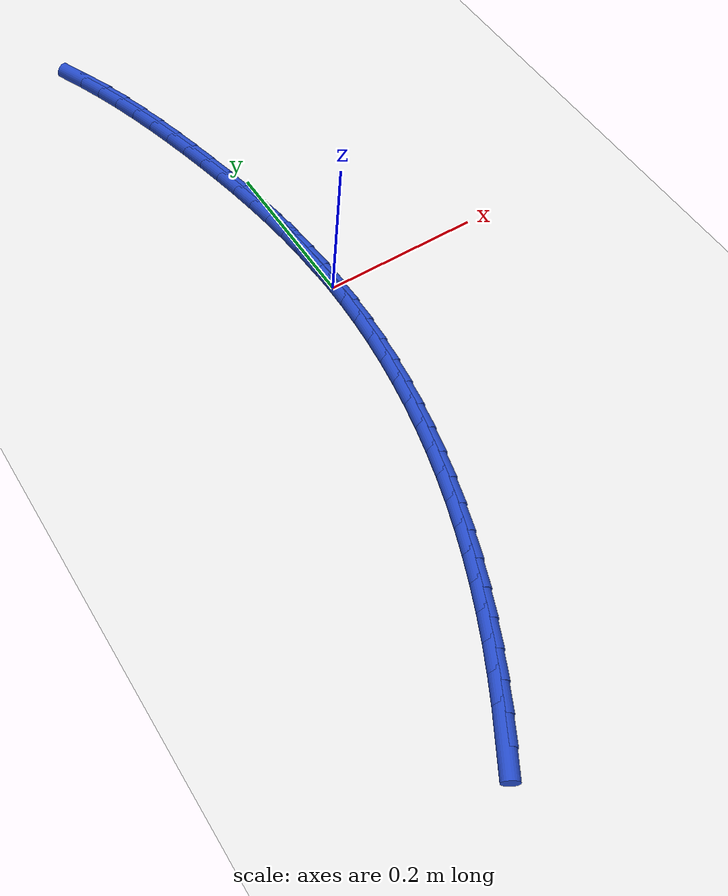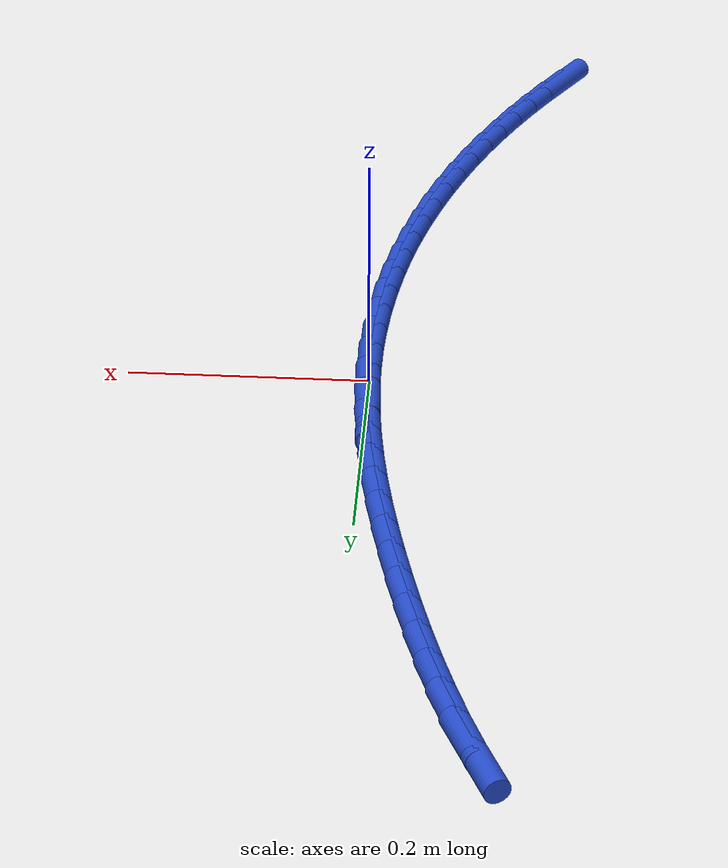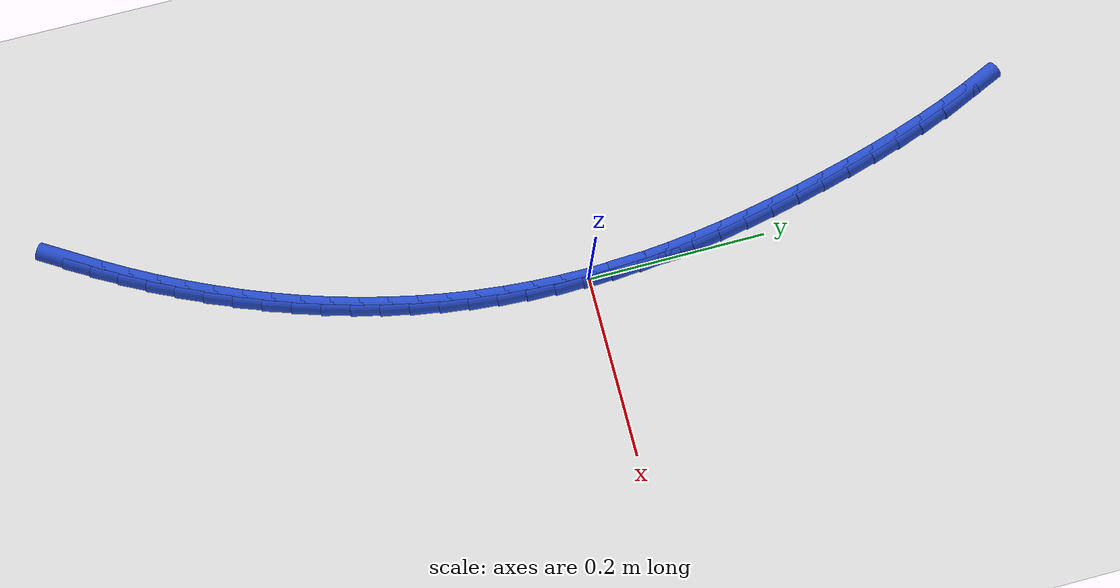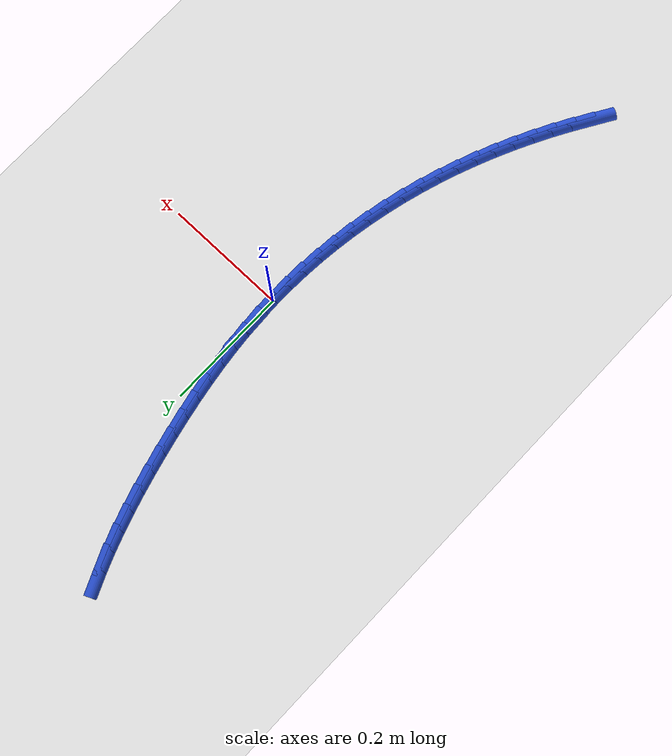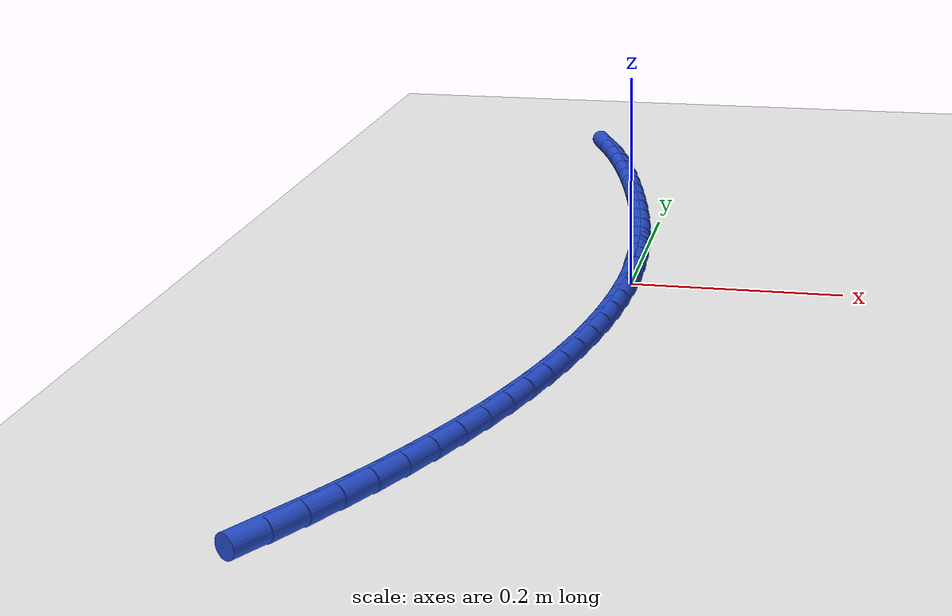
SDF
<sdf version="1.6">
 <world name="default">
  <model name="ground_plane">
   <static>1</static>
   <link name="link">
    <collision name="collision">
     <geometry><plane><normal>0 0 1</normal><size>100 100</size></plane></geometry>
     <surface><friction><ode><mu>100</mu><mu2>50</mu2></ode></friction></surface>
    </collision>
    <visual name="visual">
     <cast_shadows>0</cast_shadows>
     <geometry><plane><normal>0 0 1</normal><size>100 100</size></plane></geometry>
     <material>
      <script><uri>file://media/materials/scripts/gazebo.material</uri><name>Gazebo/WhiteGlow</name></script>
     </material>
    </visual>
   </link>
  </model>
  <model name="line">
   <link name="link_0">
    <pose>4.336808689942018e-18 3.469446951953614e-17 0.01 0 1.57 -1.5415884488783602</pose>
    <collision name="collision">
     <geometry><cylinder><radius>0.01</radius><length>0.08</length></cylinder></geometry>
    </collision>
    <visual name="visual">
     <material>
      <script><name>Gazebo/Blue</name><uri>file://media/materials/scripts/gazebo.material</uri></script>
     </material>
     <geometry><cylinder><radius>0.01</radius><length>0.08</length></cylinder></geometry>
    </visual>
   </link>
   <link name="link_1">
    <pose>-0.0009183013230216314 0.031431252091147034 0.01 0 1.57 -1.5081474570677618</pose>
    <collision name="collision">
     <geometry><cylinder><radius>0.01</radius><length>0.08</length></cylinder></geometry>
    </collision>
    <visual name="visual">
     <material>
      <script><name>Gazebo/Blue</name><uri>file://media/materials/scripts/gazebo.material</uri></script>
     </material>
     <geometry><cylinder><radius>0.01</radius><length>0.08</length></cylinder></geometry>
    </visual>
   </link>
   <link name="link_2">
    <pose>-0.0028864127806761068 0.06280509689555297 0.01 0 1.57 -1.4768871577441558</pose>
    <collision name="collision">
     <geometry><cylinder><radius>0.01</radius><length>0.08</length></cylinder></geometry>
    </collision>
    <visual name="visual">
     <material>
      <script><name>Gazebo/Blue</name><uri>file://media/materials/scripts/gazebo.material</uri></script>
     </material>
     <geometry><cylinder><radius>0.01</radius><length>0.08</length></cylinder></geometry>
    </visual>
   </link>
   <link name="link_3">
    <pose>-0.005836260036497518 0.09412440982551427 0.01 0 1.57 -1.4478570005480693</pose>
    <collision name="collision">
     <geometry><cylinder><radius>0.01</radius><length>0.08</length></cylinder></geometry>
    </collision>
    <visual name="visual">
     <material>
      <script><name>Gazebo/Blue</name><uri>file://media/materials/scripts/gazebo.material</uri></script>
     </material>
     <geometry><cylinder><radius>0.01</radius><length>0.08</length></cylinder></geometry>
    </visual>
   </link>
   <link name="link_4">
    <pose>-0.009699768754019965 0.12539206629332744 0.01 0 1.57 -1.4210836907950506</pose>
    <collision name="collision">
     <geometry><cylinder><radius>0.01</radius><length>0.08</length></cylinder></geometry>
    </collision>
    <visual name="visual">
     <material>
      <script><name>Gazebo/Blue</name><uri>file://media/materials/scripts/gazebo.material</uri></script>
     </material>
     <geometry><cylinder><radius>0.01</radius><length>0.08</length></cylinder></geometry>
    </visual>
   </link>
   <link name="link_5">
    <pose>-0.014408864596777551 0.156610941711289 0.01 0 1.57 -1.3965753767757954</pose>
    <collision name="collision">
     <geometry><cylinder><radius>0.01</radius><length>0.08</length></cylinder></geometry>
    </collision>
    <visual name="visual">
     <material>
      <script><name>Gazebo/Blue</name><uri>file://media/materials/scripts/gazebo.material</uri></script>
     </material>
     <geometry><cylinder><radius>0.01</radius><length>0.08</length></cylinder></geometry>
    </visual>
   </link>
   <link name="link_6">
    <pose>-0.019895473228304372 0.1877839114916954 0.01 0 1.57 -1.3743257470452452</pose>
    <collision name="collision">
     <geometry><cylinder><radius>0.01</radius><length>0.08</length></cylinder></geometry>
    </collision>
    <visual name="visual">
     <material>
      <script><name>Gazebo/Blue</name><uri>file://media/materials/scripts/gazebo.material</uri></script>
     </material>
     <geometry><cylinder><radius>0.01</radius><length>0.08</length></cylinder></geometry>
    </visual>
   </link>
   <link name="link_7">
    <pose>-0.026091520312134533 0.21891385104684313 0.01 0 1.57 -1.3543178584303566</pose>
    <collision name="collision">
     <geometry><cylinder><radius>0.01</radius><length>0.08</length></cylinder></geometry>
    </collision>
    <visual name="visual">
     <material>
      <script><name>Gazebo/Blue</name><uri>file://media/materials/scripts/gazebo.material</uri></script>
     </material>
     <geometry><cylinder><radius>0.01</radius><length>0.08</length></cylinder></geometry>
    </visual>
   </link>
   <link name="link_8">
    <pose>-0.032928931511802144 0.25000363578902873 0.01 0 1.57 -1.3365275845765345</pose>
    <collision name="collision">
     <geometry><cylinder><radius>0.01</radius><length>0.08</length></cylinder></geometry>
    </collision>
    <visual name="visual">
     <material>
      <script><name>Gazebo/Blue</name><uri>file://media/materials/scripts/gazebo.material</uri></script>
     </material>
     <geometry><cylinder><radius>0.01</radius><length>0.08</length></cylinder></geometry>
    </visual>
   </link>
   <link name="link_9">
    <pose>-0.04033963249084128 0.28105614113054855 0.01 0 1.57 -1.3200836614919882</pose>
    <collision name="collision">
     <geometry><cylinder><radius>0.01</radius><length>0.08</length></cylinder></geometry>
    </collision>
    <visual name="visual">
     <material>
      <script><name>Gazebo/Blue</name><uri>file://media/materials/scripts/gazebo.material</uri></script>
     </material>
     <geometry><cylinder><radius>0.01</radius><length>0.08</length></cylinder></geometry>
    </visual>
   </link>
   <link name="link_10">
    <pose>-0.04827984922859303 0.31206035759031553 0.01 0 1.57 -1.3013412949501342</pose>
    <collision name="collision">
     <geometry><cylinder><radius>0.01</radius><length>0.08</length></cylinder></geometry>
    </collision>
    <visual name="visual">
     <material>
      <script><name>Gazebo/Blue</name><uri>file://media/materials/scripts/gazebo.material</uri></script>
     </material>
     <geometry><cylinder><radius>0.01</radius><length>0.08</length></cylinder></geometry>
    </visual>
   </link>
   <link name="link_11">
    <pose>-0.05680957892490114 0.3429459821231411 0.01 0 1.57 -1.2792599001472036</pose>
    <collision name="collision">
     <geometry><cylinder><radius>0.01</radius><length>0.08</length></cylinder></geometry>
    </collision>
    <visual name="visual">
     <material>
      <script><name>Gazebo/Blue</name><uri>file://media/materials/scripts/gazebo.material</uri></script>
     </material>
     <geometry><cylinder><radius>0.01</radius><length>0.08</length></cylinder></geometry>
    </visual>
   </link>
   <link name="link_12">
    <pose>-0.06601651359103096 0.3736268872185536 0.01 0 1.57 -1.2537377770622167</pose>
    <collision name="collision">
     <geometry><cylinder><radius>0.01</radius><length>0.08</length></cylinder></geometry>
    </collision>
    <visual name="visual">
     <material>
      <script><name>Gazebo/Blue</name><uri>file://media/materials/scripts/gazebo.material</uri></script>
     </material>
     <geometry><cylinder><radius>0.01</radius><length>0.08</length></cylinder></geometry>
    </visual>
   </link>
   <link name="link_13">
    <pose>-0.07598834550704953 0.4040169452124909 0.01 0 1.57 -1.2246594559088175</pose>
    <collision name="collision">
     <geometry><cylinder><radius>0.01</radius><length>0.08</length></cylinder></geometry>
    </collision>
    <visual name="visual">
     <material>
      <script><name>Gazebo/Blue</name><uri>file://media/materials/scripts/gazebo.material</uri></script>
     </material>
     <geometry><cylinder><radius>0.01</radius><length>0.08</length></cylinder></geometry>
    </visual>
   </link>
   <link name="link_14">
    <pose>-0.08681276695302381 0.4340300284408909 0.01 0 1.57 -1.1919039512613172</pose>
    <collision name="collision">
     <geometry><cylinder><radius>0.01</radius><length>0.08</length></cylinder></geometry>
    </collision>
    <visual name="visual">
     <material>
      <script><name>Gazebo/Blue</name><uri>file://media/materials/scripts/gazebo.material</uri></script>
     </material>
     <geometry><cylinder><radius>0.01</radius><length>0.08</length></cylinder></geometry>
    </visual>
   </link>
   <link name="link_15">
    <pose>-0.0985774702090209 0.463580009239692 0.01 0 1.57 -1.1553553642338417</pose>
    <collision name="collision">
     <geometry><cylinder><radius>0.01</radius><length>0.08</length></cylinder></geometry>
    </collision>
    <visual name="visual">
     <material>
      <script><name>Gazebo/Blue</name><uri>file://media/materials/scripts/gazebo.material</uri></script>
     </material>
     <geometry><cylinder><radius>0.01</radius><length>0.08</length></cylinder></geometry>
    </visual>
   </link>
   <link name="link_202">
    <pose>-0.15802848197869798 -0.5394912976897038 0.01 0 1.57 1.027116705210835</pose>
    <collision name="collision">
     <geometry><cylinder><radius>0.01</radius><length>0.08</length></cylinder></geometry>
    </collision>
    <visual name="visual">
     <material>
      <script><name>Gazebo/Blue</name><uri>file://media/materials/scripts/gazebo.material</uri></script>
     </material>
     <geometry><cylinder><radius>0.01</radius><length>0.08</length></cylinder></geometry>
    </visual>
   </link>
   <link name="link_203">
    <pose>-0.14189157449816767 -0.5127941209234416 0.01 0 1.57 1.0552133177487213</pose>
    <collision name="collision">
     <geometry><cylinder><radius>0.01</radius><length>0.08</length></cylinder></geometry>
    </collision>
    <visual name="visual">
     <material>
      <script><name>Gazebo/Blue</name><uri>file://media/materials/scripts/gazebo.material</uri></script>
     </material>
     <geometry><cylinder><radius>0.01</radius><length>0.08</length></cylinder></geometry>
    </visual>
   </link>
   <link name="link_204">
    <pose>-0.12642271302007374 -0.48549829387166654 0.01 0 1.57 1.0835217330396556</pose>
    <collision name="collision">
     <geometry><cylinder><radius>0.01</radius><length>0.08</length></cylinder></geometry>
    </collision>
    <visual name="visual">
     <material>
      <script><name>Gazebo/Blue</name><uri>file://media/materials/scripts/gazebo.material</uri></script>
     </material>
     <geometry><cylinder><radius>0.01</radius><length>0.08</length></cylinder></geometry>
    </visual>
   </link>
   <link name="link_205">
    <pose>-0.1116631053994863 -0.45764432416716067 0.01 0 1.57 1.1121423320686668</pose>
    <collision name="collision">
     <geometry><cylinder><radius>0.01</radius><length>0.08</length></cylinder></geometry>
    </collision>
    <visual name="visual">
     <material>
      <script><name>Gazebo/Blue</name><uri>file://media/materials/scripts/gazebo.material</uri></script>
     </material>
     <geometry><cylinder><radius>0.01</radius><length>0.08</length></cylinder></geometry>
    </visual>
   </link>
   <link name="link_206">
    <pose>-0.09765395949147594 -0.42927271944270634 0.01 0 1.57 1.1411732532061594</pose>
    <collision name="collision">
     <geometry><cylinder><radius>0.01</radius><length>0.08</length></cylinder></geometry>
    </collision>
    <visual name="visual">
     <material>
      <script><name>Gazebo/Blue</name><uri>file://media/materials/scripts/gazebo.material</uri></script>
     </material>
     <geometry><cylinder><radius>0.01</radius><length>0.08</length></cylinder></geometry>
    </visual>
   </link>
   <link name="link_207">
    <pose>-0.0844364831511129 -0.4004239873310856 0.01 0 1.57 1.1707108512983093</pose>
    <collision name="collision">
     <geometry><cylinder><radius>0.01</radius><length>0.08</length></cylinder></geometry>
    </collision>
    <visual name="visual">
     <material>
      <script><name>Gazebo/Blue</name><uri>file://media/materials/scripts/gazebo.material</uri></script>
     </material>
     <geometry><cylinder><radius>0.01</radius><length>0.08</length></cylinder></geometry>
    </visual>
   </link>
   <link name="link_208">
    <pose>-0.07205188423346835 -0.3711386354650821 0.01 0 1.57 1.2008500029694325</pose>
    <collision name="collision">
     <geometry><cylinder><radius>0.01</radius><length>0.08</length></cylinder></geometry>
    </collision>
    <visual name="visual">
     <material>
      <script><name>Gazebo/Blue</name><uri>file://media/materials/scripts/gazebo.material</uri></script>
     </material>
     <geometry><cylinder><radius>0.01</radius><length>0.08</length></cylinder></geometry>
    </visual>
   </link>
   <link name="link_209">
    <pose>-0.06054137059361252 -0.34145717147747784 0.01 0 1.57 1.2316842452039498</pose>
    <collision name="collision">
     <geometry><cylinder><radius>0.01</radius><length>0.08</length></cylinder></geometry>
    </collision>
    <visual name="visual">
     <material>
      <script><name>Gazebo/Blue</name><uri>file://media/materials/scripts/gazebo.material</uri></script>
     </material>
     <geometry><cylinder><radius>0.01</radius><length>0.08</length></cylinder></geometry>
    </visual>
   </link>
   <link name="link_210">
    <pose>-0.04994615008661592 -0.311420103001055 0.01 0 1.57 1.2633057279672395</pose>
    <collision name="collision">
     <geometry><cylinder><radius>0.01</radius><length>0.08</length></cylinder></geometry>
    </collision>
    <visual name="visual">
     <material>
      <script><name>Gazebo/Blue</name><uri>file://media/materials/scripts/gazebo.material</uri></script>
     </material>
     <geometry><cylinder><radius>0.01</radius><length>0.08</length></cylinder></geometry>
    </visual>
   </link>
   <link name="link_211">
    <pose>-0.040307430519596676 -0.2810679376629159 0.01 0 1.57 1.2956605451330676</pose>
    <collision name="collision">
     <geometry><cylinder><radius>0.01</radius><length>0.08</length></cylinder></geometry>
    </collision>
    <visual name="visual">
     <material>
      <script><name>Gazebo/Blue</name><uri>file://media/materials/scripts/gazebo.material</uri></script>
     </material>
     <geometry><cylinder><radius>0.01</radius><length>0.08</length></cylinder></geometry>
    </visual>
   </link>
   <link name="link_212">
    <pose>-0.031661479132258225 -0.25044059784167977 0.01 0 1.57 1.328282082790731</pose>
    <collision name="collision">
     <geometry><cylinder><radius>0.01</radius><length>0.08</length></cylinder></geometry>
    </collision>
    <visual name="visual">
     <material>
      <script><name>Gazebo/Blue</name><uri>file://media/materials/scripts/gazebo.material</uri></script>
     </material>
     <geometry><cylinder><radius>0.01</radius><length>0.08</length></cylinder></geometry>
    </visual>
   </link>
   <link name="link_213">
    <pose>-0.024026051079034143 -0.21957581301606435 0.01 0 1.57 1.3610977480020865</pose>
    <collision name="collision">
     <geometry><cylinder><radius>0.01</radius><length>0.08</length></cylinder></geometry>
    </collision>
    <visual name="visual">
     <material>
      <script><name>Gazebo/Blue</name><uri>file://media/materials/scripts/gazebo.material</uri></script>
     </material>
     <geometry><cylinder><radius>0.01</radius><length>0.08</length></cylinder></geometry>
    </visual>
   </link>
   <link name="link_214">
    <pose>-0.01741456650204729 -0.18851079914899616 0.01 0 1.57 1.3941592329877814</pose>
    <collision name="collision">
     <geometry><cylinder><radius>0.01</radius><length>0.08</length></cylinder></geometry>
    </collision>
    <visual name="visual">
     <material>
      <script><name>Gazebo/Blue</name><uri>file://media/materials/scripts/gazebo.material</uri></script>
     </material>
     <geometry><cylinder><radius>0.01</radius><length>0.08</length></cylinder></geometry>
    </visual>
   </link>
   <link name="link_215">
    <pose>-0.011840445543420744 -0.15728277220340242 0.01 0 1.57 1.4275174151245436</pose>
    <collision name="collision">
     <geometry><cylinder><radius>0.01</radius><length>0.08</length></cylinder></geometry>
    </collision>
    <visual name="visual">
     <material>
      <script><name>Gazebo/Blue</name><uri>file://media/materials/scripts/gazebo.material</uri></script>
     </material>
     <geometry><cylinder><radius>0.01</radius><length>0.08</length></cylinder></geometry>
    </visual>
   </link>
   <link name="link_216">
    <pose>-0.0073171083452774725 -0.1259289481422095 0.01 0 1.57 1.4612220709464105</pose>
    <collision name="collision">
     <geometry><cylinder><radius>0.01</radius><length>0.08</length></cylinder></geometry>
    </collision>
    <visual name="visual">
     <material>
      <script><name>Gazebo/Blue</name><uri>file://media/materials/scripts/gazebo.material</uri></script>
     </material>
     <geometry><cylinder><radius>0.01</radius><length>0.08</length></cylinder></geometry>
    </visual>
   </link>
   <link name="link_217">
    <pose>-0.003857975049740766 -0.09448654292834618 0.01 0 1.57 1.4953215437407963</pose>
    <collision name="collision">
     <geometry><cylinder><radius>0.01</radius><length>0.08</length></cylinder></geometry>
    </collision>
    <visual name="visual">
     <material>
      <script><name>Gazebo/Blue</name><uri>file://media/materials/scripts/gazebo.material</uri></script>
     </material>
     <geometry><cylinder><radius>0.01</radius><length>0.08</length></cylinder></geometry>
    </visual>
   </link>
   <link name="link_218">
    <pose>-0.0014764657989335675 -0.06299277252473881 0.01 0 1.57 1.5298623573305175</pose>
    <collision name="collision">
     <geometry><cylinder><radius>0.01</radius><length>0.08</length></cylinder></geometry>
    </collision>
    <visual name="visual">
     <material>
      <script><name>Gazebo/Blue</name><uri>file://media/materials/scripts/gazebo.material</uri></script>
     </material>
     <geometry><cylinder><radius>0.01</radius><length>0.08</length></cylinder></geometry>
    </visual>
   </link>
   <link name="link_219">
    <pose>-0.00018600073497895397 -0.03148485289431466 0.01 0 1.57 1.5648887695375295</pose>
    <collision name="collision">
     <geometry><cylinder><radius>0.01</radius><length>0.08</length></cylinder></geometry>
    </collision>
    <visual name="visual">
     <material>
      <script><name>Gazebo/Blue</name><uri>file://media/materials/scripts/gazebo.material</uri></script>
     </material>
     <geometry><cylinder><radius>0.01</radius><length>0.08</length></cylinder></geometry>
    </visual>
   </link>
   <link name="link_220">
    <pose>8.673617379884035e-19 -1.3183898417423734e-16 0.01 0 1.57 -1.5411503933978958</pose>
    <collision name="collision">
     <geometry><cylinder><radius>0.01</radius><length>0.08</length></cylinder></geometry>
    </collision>
    <visual name="visual">
     <material>
      <script><name>Gazebo/Blue</name><uri>file://media/materials/scripts/gazebo.material</uri></script>
     </material>
     <geometry><cylinder><radius>0.01</radius><length>0.08</length></cylinder></geometry>
    </visual>
   </link>
   <link name="link_221">
    <pose>-0.0009318837361197464 0.03142457019527531 0.01 0 1.57 -1.505031703085391</pose>
    <collision name="collision">
     <geometry><cylinder><radius>0.01</radius><length>0.08</length></cylinder></geometry>
    </collision>
    <visual name="visual">
     <material>
      <script><name>Gazebo/Blue</name><uri>file://media/materials/scripts/gazebo.material</uri></script>
     </material>
     <geometry><cylinder><radius>0.01</radius><length>0.08</length></cylinder></geometry>
    </visual>
   </link>
   <link name="link_222">
    <pose>-0.002995072085461358 0.0627516417285875 0.01 0 1.57 -1.5231035367305177</pose>
    <collision name="collision">
     <geometry><cylinder><radius>0.01</radius><length>0.08</length></cylinder></geometry>
    </collision>
    <visual name="visual">
     <material>
      <script><name>Gazebo/Blue</name><uri>file://media/materials/scripts/gazebo.material</uri></script>
     </material>
     <geometry><cylinder><radius>0.01</radius><length>0.08</length></cylinder></geometry>
    </visual>
   </link>
  </model>
 </world>
</sdf>
